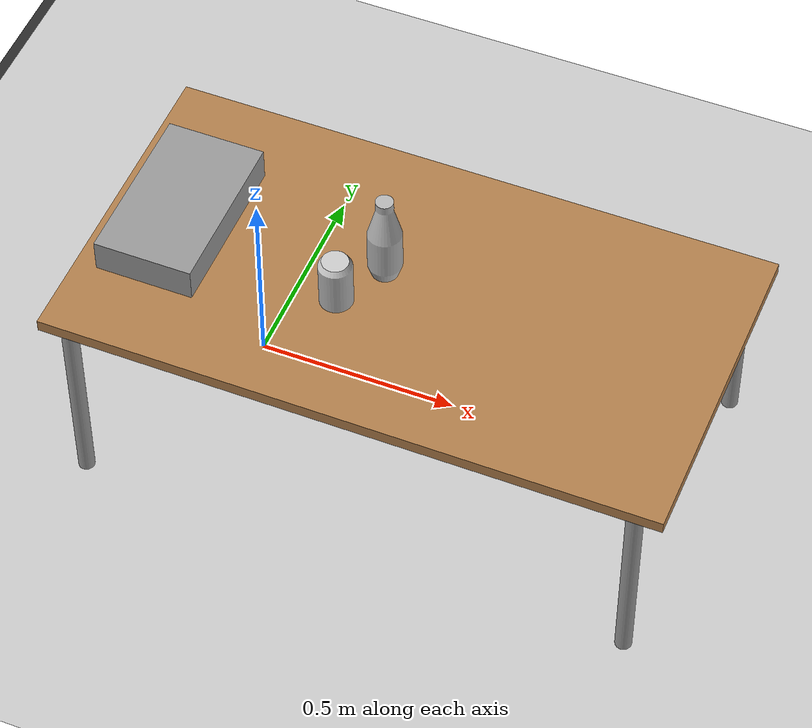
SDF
<sdf version="1.6">
 <world name="default">
  <light name="sun" type="directional">
   <pose>0 0 10 0 -0 0</pose>
   <diffuse>0.8 0.8 0.8 1</diffuse>
   <specular>0.2 0.2 0.2 1</specular>
   <attenuation>
    <range>1000</range>
    <constant>0.9</constant>
    <linear>0.01</linear>
    <quadratic>0.001</quadratic>
   </attenuation>
   <direction>-0.5 0.1 -0.9</direction>
  </light>
  <model name="ground_plane">
   <static>1</static>
   <link name="link">
    <collision name="collision">
     <geometry><plane><normal>0 0 1</normal><size>100 100</size></plane></geometry>
     <surface><friction><ode><mu>100</mu><mu2>50</mu2></ode></friction></surface>
    </collision>
    <visual name="visual">
     <cast_shadows>0</cast_shadows>
     <geometry><plane><normal>0 0 1</normal><size>100 100</size></plane></geometry>
     <material>
      <script><uri>file://media/materials/scripts/gazebo.material</uri><name>Gazebo/Grey</name></script>
     </material>
    </visual>
   </link>
  </model>
  <gravity>0 0 -9.8</gravity>
  <magnetic_field>6e-06 2.3e-05 -4.2e-05</magnetic_field>
  <atmosphere type="adiabatic"/>
  <physics name="default_physics" default="0" type="ode">
   <max_step_size>0.001</max_step_size>
   <real_time_factor>1</real_time_factor>
   <real_time_update_rate>1000</real_time_update_rate>
  </physics>
  <scene><ambient>0.4 0.4 0.4 1</ambient><background>0.7 0.7 0.7 1</background><shadows>1</shadows></scene>
  <audio><device>default</device></audio>
  <spherical_coordinates>
   <surface_model>EARTH_WGS84</surface_model>
   <latitude_deg>0</latitude_deg>
   <longitude_deg>0</longitude_deg>
   <elevation>0</elevation>
   <heading_deg>0</heading_deg>
  </spherical_coordinates>
  <model name="table">
   <static>1</static>
   <link name="link">
    <collision name="surface">
     <pose>0 0 0.5 0 -0 0</pose>
     <geometry><box><size>1.5 0.8 0.03</size></box></geometry>
     <surface><friction><ode><mu>0.6</mu><mu2>0.6</mu2></ode></friction></surface>
    </collision>
    <visual name="visual1">
     <pose>0 0 0.5 0 -0 0</pose>
     <geometry><box><size>1.5 0.8 0.03</size></box></geometry>
     <material>
      <script><uri>file://media/materials/scripts/gazebo.material</uri><name>Gazebo/Wood</name></script>
     </material>
    </visual>
    <collision name="front_left_leg">
     <pose>0.68 0.38 0.25 0 -0 0</pose>
     <geometry><cylinder><radius>0.02</radius><length>0.5</length></cylinder></geometry>
    </collision>
    <visual name="front_left_leg">
     <pose>0.68 0.38 0.25 0 -0 0</pose>
     <geometry><cylinder><radius>0.02</radius><length>0.5</length></cylinder></geometry>
     <material>
      <script><uri>file://media/materials/scripts/gazebo.material</uri><name>Gazebo/Grey</name></script>
     </material>
    </visual>
    <collision name="front_right_leg">
     <pose>0.68 -0.38 0.25 0 -0 0</pose>
     <geometry><cylinder><radius>0.02</radius><length>0.5</length></cylinder></geometry>
    </collision>
    <visual name="front_right_leg">
     <pose>0.68 -0.38 0.25 0 -0 0</pose>
     <geometry><cylinder><radius>0.02</radius><length>0.5</length></cylinder></geometry>
     <material>
      <script><uri>file://media/materials/scripts/gazebo.material</uri><name>Gazebo/Grey</name></script>
     </material>
    </visual>
    <collision name="back_right_leg">
     <pose>-0.68 -0.38 0.25 0 -0 0</pose>
     <geometry><cylinder><radius>0.02</radius><length>0.5</length></cylinder></geometry>
    </collision>
    <visual name="back_right_leg">
     <pose>-0.68 -0.38 0.25 0 -0 0</pose>
     <geometry><cylinder><radius>0.02</radius><length>0.5</length></cylinder></geometry>
     <material>
      <script><uri>file://media/materials/scripts/gazebo.material</uri><name>Gazebo/Grey</name></script>
     </material>
    </visual>
    <collision name="back_left_leg">
     <pose>-0.68 0.38 0.25 0 -0 0</pose>
     <geometry><cylinder><radius>0.02</radius><length>0.5</length></cylinder></geometry>
    </collision>
    <visual name="back_left_leg">
     <pose>-0.68 0.38 0.25 0 -0 0</pose>
     <geometry><cylinder><radius>0.02</radius><length>0.5</length></cylinder></geometry>
     <material>
      <script><uri>file://media/materials/scripts/gazebo.material</uri><name>Gazebo/Grey</name></script>
     </material>
    </visual>
   </link>
   <pose>0.436601 -0.112279 0 0 -0 0</pose>
  </model>
  <model name="asphalt_plane">
   <static>1</static>
   <link name="link">
    <collision name="collision"><geometry><box><size>20 20 0.1</size></box></geometry></collision>
    <visual name="visual">
     <cast_shadows>0</cast_shadows>
     <geometry><box><size>20 20 0.1</size></box></geometry>
     <material>
      <script>
       <uri>model://asphalt_plane/materials/scripts</uri>
       <uri>model://asphalt_plane/materials/textures</uri>
       <name>vrc/asphalt</name>
      </script>
     </material>
    </visual>
   </link>
   <pose>-86.5622 -4.74054 0 0 -0 0</pose>
  </model>
  <model name="Green Can">
   <static>0</static>
   <link name="link">
    <inertial>
     <mass>0.3</mass>
     <inertia>
      <ixx>0.00055575</ixx>
      <ixy>0</ixy>
      <ixz>0</ixz>
      <iyy>0.00055575</iyy>
      <iyz>0</iyz>
      <izz>0.0001755</izz>
     </inertia>
    </inertial>
    <collision name="collision">
     <geometry><mesh><uri>model://greenCan/meshes/canGreen.dae</uri><scale>0.04 0.04 0.04</scale></mesh></geometry>
     <surface>
      <friction><ode><mu>3</mu><mu2>3</mu2></ode></friction>
      <contact><ode><kp>1e+07</kp><kd>1</kd><min_depth>0.001</min_depth><max_vel>0.5</max_vel></ode></contact>
     </surface>
    </collision>
    <visual name="visual">
     <geometry><mesh><uri>model://greenCan/meshes/canGreen.dae</uri><scale>0.04 0.04 0.04</scale></mesh></geometry>
    </visual>
   </link>
   <pose>0.291162 -0.203114 0.585645 0.004801 -0.004139 0.283871</pose>
  </model>
  <model name="unit_box">
   <static>1</static>
   <pose>-0.139333 -0.111698 0.545396 0 -0 0</pose>
   <link name="link">
    <inertial>
     <mass>1</mass>
     <inertia>
      <ixx>0.166667</ixx>
      <ixy>0</ixy>
      <ixz>0</ixz>
      <iyy>0.166667</iyy>
      <iyz>0</iyz>
      <izz>0.166667</izz>
     </inertia>
    </inertial>
    <visual name="visual">
     <geometry><box><size>0.241277 0.407907 0.103712</size></box></geometry>
     <material>
      <script><name>Gazebo/Grey</name><uri>file://media/materials/scripts/gazebo.material</uri></script>
     </material>
    </visual>
   </link>
  </model>
  <model name="Red Bottle">
   <static>0</static>
   <link name="link">
    <inertial>
     <mass>0.3</mass>
     <inertia>
      <ixx>0.00055575</ixx>
      <ixy>0</ixy>
      <ixz>0</ixz>
      <iyy>0.00055575</iyy>
      <iyz>0</iyz>
      <izz>0.0001755</izz>
     </inertia>
    </inertial>
    <collision name="collision">
     <geometry>
      <mesh><uri>model://redBottle/meshes/bottleRedBlue.dae</uri><scale>0.041 0.041 0.041</scale></mesh>
     </geometry>
     <surface>
      <friction><ode><mu>3</mu><mu2>3</mu2></ode></friction>
      <contact><ode><kp>1e+07</kp><kd>1</kd><min_depth>0.001</min_depth><max_vel>0.5</max_vel></ode></contact>
     </surface>
    </collision>
    <visual name="visual">
     <geometry>
      <mesh><uri>model://redBottle/meshes/bottleRedBlue.dae</uri><scale>0.041 0.041 0.041</scale></mesh>
     </geometry>
    </visual>
   </link>
   <pose>0.358342 -0.076019 0.633899 0.000462 3e-06 -0.032655</pose>
  </model>
 </world>
</sdf>
